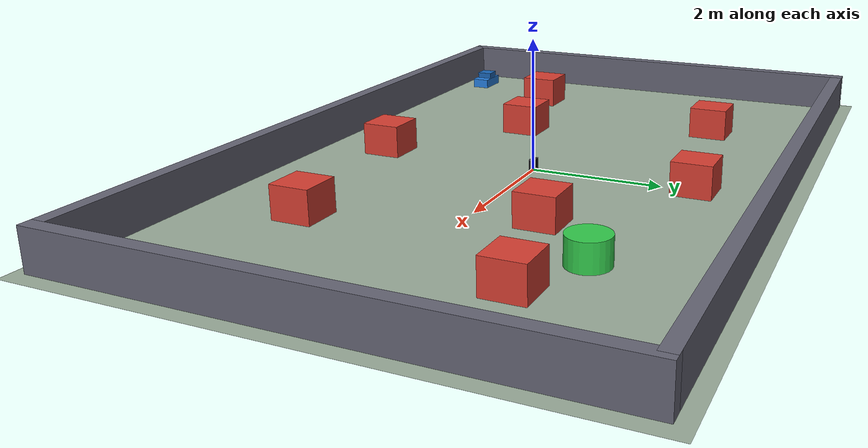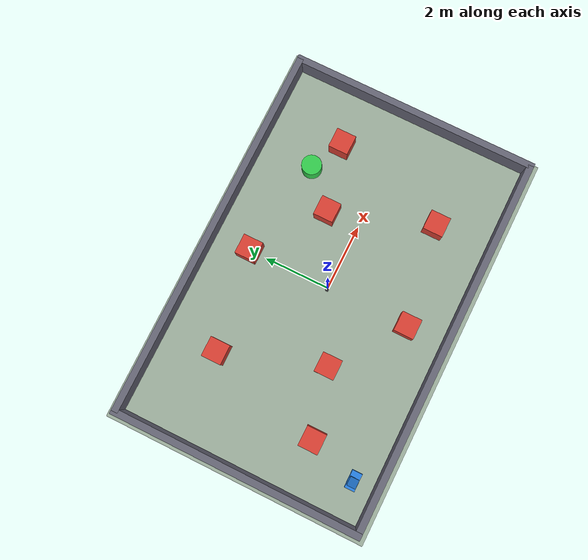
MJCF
<!-- 3D arena + car (body + 4 wheels) as kinematic mocap bodies + mocap obstacles. Driven by a bicycle kinematic model. -->
<mujoco model="car_arena">
  <option timestep="0.02"/>
  <visual><global offwidth="640" offheight="480"/></visual>

  <asset>
    <texture type="skybox" builtin="gradient" rgb1="0.5 0.6 0.78" rgb2="0.1 0.15 0.28" width="256" height="256"/>
    <texture name="grid" type="2d" builtin="checker" rgb1="0.5 0.58 0.5" rgb2="0.72 0.78 0.72" width="300" height="300"/>
    <material name="grid" texture="grid" texrepeat="22 14" reflectance="0.08"/>
  </asset>

  <worldbody>
    <light pos="0 0 7" dir="0 0 -1" diffuse="0.95 0.95 0.95"/>
    <geom name="floor" type="plane" size="6 4 0.1" material="grid"/>

    <geom name="wN" type="box" size="5.7 0.1 0.3" pos="0  3.7 0.3" rgba="0.4 0.4 0.46 1"/>
    <geom name="wS" type="box" size="5.7 0.1 0.3" pos="0 -3.7 0.3" rgba="0.4 0.4 0.46 1"/>
    <geom name="wE" type="box" size="0.1 3.8 0.3" pos="5.7 0 0.3" rgba="0.4 0.4 0.46 1"/>
    <geom name="wW" type="box" size="0.1 3.8 0.3" pos="-5.7 0 0.3" rgba="0.4 0.4 0.46 1"/>

    <!-- obstacles (randomized each episode) -->
    <body name="o0" mocap="true" pos="2 1 0.25"><geom type="box" size="0.3 0.3 0.25" rgba="0.85 0.25 0.2 1"/></body>
    <body name="o1" mocap="true" pos="-2 -1 0.25"><geom type="box" size="0.3 0.3 0.25" rgba="0.85 0.25 0.2 1"/></body>
    <body name="o2" mocap="true" pos="3 -2 0.25"><geom type="box" size="0.3 0.3 0.25" rgba="0.85 0.25 0.2 1"/></body>
    <body name="o3" mocap="true" pos="-3 2 0.25"><geom type="box" size="0.3 0.3 0.25" rgba="0.85 0.25 0.2 1"/></body>
    <body name="o4" mocap="true" pos="0 2.5 0.25"><geom type="box" size="0.3 0.3 0.25" rgba="0.85 0.25 0.2 1"/></body>
    <body name="o5" mocap="true" pos="0 -2.5 0.25"><geom type="box" size="0.3 0.3 0.25" rgba="0.85 0.25 0.2 1"/></body>
    <body name="o6" mocap="true" pos="4 1.5 0.25"><geom type="box" size="0.3 0.3 0.25" rgba="0.85 0.25 0.2 1"/></body>
    <body name="o7" mocap="true" pos="-4 -1.5 0.25"><geom type="box" size="0.3 0.3 0.25" rgba="0.85 0.25 0.2 1"/></body>

    <!-- target (green) for RL driving -->
    <body name="target" mocap="true" pos="3 2 0.2"><geom type="cylinder" size="0.3 0.2" rgba="0.2 0.8 0.3 1"/></body>

    <!-- car: body + 4 wheels (mocap, placed by the kinematic model) -->
    <body name="car" mocap="true" pos="-4.5 -3 0.16">
      <geom type="box" size="0.26 0.15 0.08" rgba="0.15 0.5 0.88 1"/>
      <geom type="box" size="0.13 0.13 0.06" pos="-0.04 0 0.12" rgba="0.1 0.4 0.72 1"/>
    </body>
    <body name="w_rl" mocap="true" pos="0 0 0.09"><geom type="box" size="0.09 0.04 0.09" rgba="0.08 0.08 0.08 1"/></body>
    <body name="w_rr" mocap="true" pos="0 0 0.09"><geom type="box" size="0.09 0.04 0.09" rgba="0.08 0.08 0.08 1"/></body>
    <body name="w_fl" mocap="true" pos="0 0 0.09"><geom type="box" size="0.09 0.04 0.09" rgba="0.05 0.05 0.05 1"/></body>
    <body name="w_fr" mocap="true" pos="0 0 0.09"><geom type="box" size="0.09 0.04 0.09" rgba="0.05 0.05 0.05 1"/></body>
  </worldbody>
</mujoco>
